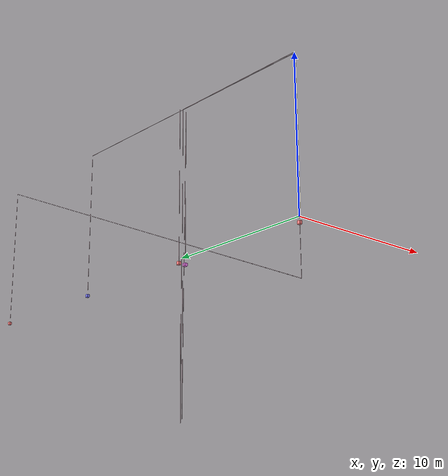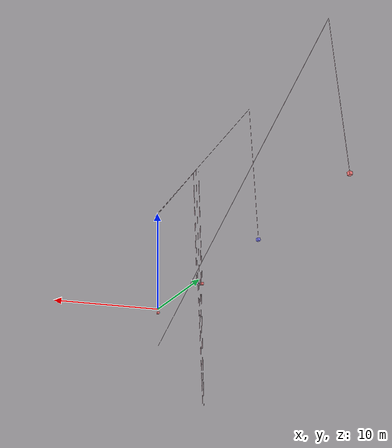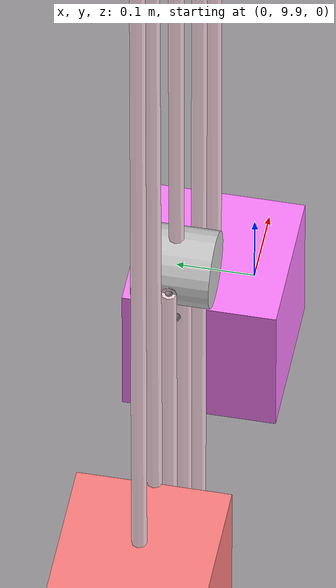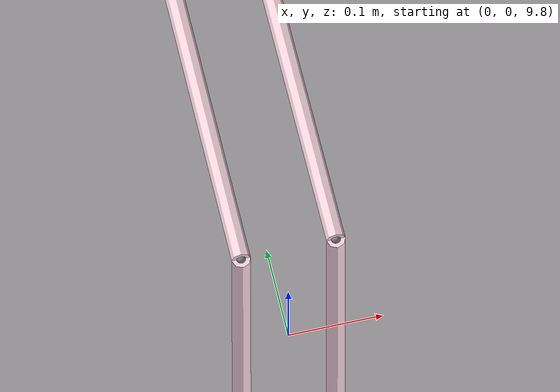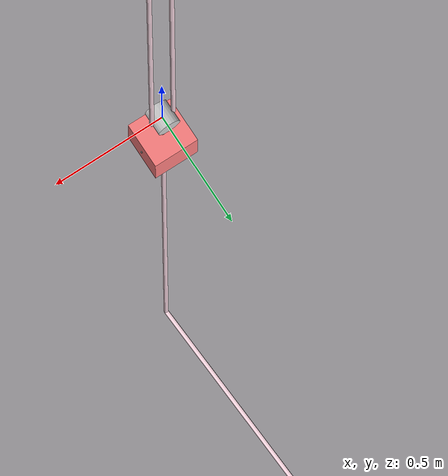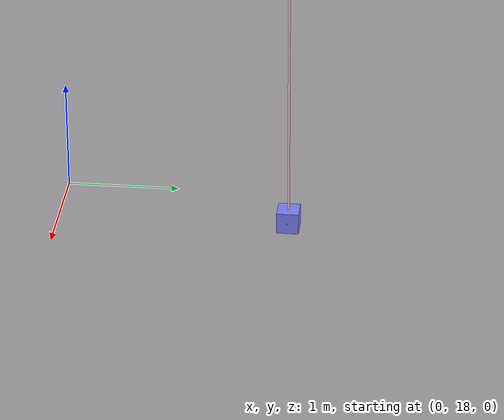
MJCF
<mujoco>
            <compiler angle="radian" autolimits="true" />
            <compiler meshdir="asset" texturedir="asset" assetdir="asset" />
            <option gravity="0 0 -9.81" />
            <default class="main">
            <geom friction="0 0 0" solimp="0.9 1 0.001 0.01 20" solref="0.02 1" condim="1" />
        </default>

        <visual>
            <headlight diffuse="0.7 0.7 0.7" ambient="0.5 0.5 0.5" />
            <global offwidth="1920" offheight="1080" />
        </visual>

        <asset>
            <texture type="skybox" builtin="gradient" rgb1="0 0.5 0.7" rgb2="0 0 0" width="512" height="512" />
            <texture type="2d" name="checks1" builtin="checker" rgb1="1 1 1" rgb2="0 0 0" width="256" height="256" />
            <material name="test_color" texture="checks1" texuniform="true" texrepeat="2 2" />
            <material name="reflectance" reflectance=".4" />
            <texture name="grid" type="2d" builtin="checker" width="512" height="512" rgb1="1.0 0.6235 0.1098" rgb2="1.0 0.749 0.4118" />
            <texture name="white-texture-background" type="2d" file="/home/aryansatpathy/DevStuff/cmu/PHO/sim/geom_sources/fixed_sources/rocket/rocket.white-texture-background.png" content_type="image/png" />
            <material name="pulley" texture="grid" texrepeat="2 2" texuniform="true" />

        </asset>
        <worldbody><body name="masswithmovablepulley_0.left_fixed_pulley" pos="-0.05 0.0 10.0" quat="1.0 0.0 0.0 0.0"><site name="masswithmovablepulley_0.left_fixed_pulley.site" pos="0 0 0.0" quat="1.0 -0.0 -0.0 -0.0" />
</body><body name="masswithmovablepulley_0.movable_pulley-0" pos="0.0 0.0 0.0" quat="1.0 0.0 0.0 0.0"><geom name="masswithmovablepulley_0.movable_pulley-0.geom" type="cylinder" pos="0 0 0" size="0.05 0.05" material="pulley" rgba="0.8 0.8 0.8 1.0" mass="0.43" quat="0 0 0.7071068 0.7071068" contype="1" conaffinity="1" />
<site name="masswithmovablepulley_0.movable_pulley-0.site" pos="0.0 0 -0.05" quat="1.0 -0.0 -0.0 -0.0" />
<site name="masswithmovablepulley_0.movable_pulley-0.sensor" pos="0 0 0" quat="1.0 -0.0 -0.0 -0.0" />
<site name="masswithmovablepulley_0.movable_pulley-0.tendon_site" pos="0.0 0 -0.1" quat="1.0 -0.0 -0.0 -0.0" />
<site name="masswithmovablepulley_0.movable_pulley-0.left_tendon_site" pos="-0.05 0 0" quat="1.0 -0.0 -0.0 -0.0" />
<site name="masswithmovablepulley_0.movable_pulley-0.right_tendon_site" pos="0.05 0 0" quat="1.0 -0.0 -0.0 -0.0" />
<joint type="slide" axis="1 0 0" pos="0 0 0" />
<joint type="slide" axis="0 1 0" pos="0 0 0" />
<joint type="slide" axis="0 0 1" pos="0 0 0" />
</body>
<body name="masswithmovablepulley_0.right_fixed_pulley" pos="0.05 0.0 10.0" quat="1.0 0.0 0.0 0.0"><site name="masswithmovablepulley_0.right_fixed_pulley.site" pos="0 0 0.0" quat="1.0 -0.0 -0.0 -0.0" />
</body><body name="masswithmovablepulley_0.mass" pos="0.0 0.0 -0.35" quat="1.0 0.0 0.0 0.0">
<geom name="masswithmovablepulley_0.mass.geom" type="box" pos="0 0 0" size="0.1 0.1 0.1" rgba="1.0 0.5 0.5 1.0" mass="1.8" quat="0 0 0 1" condim="1" contype="1" conaffinity="1" />
<site name="masswithmovablepulley_0.mass.top-1" pos="0.0 0 0.1" quat="1.0 -0.0 -0.0 -0.0" />
<site name="masswithmovablepulley_0.mass.sensor" pos="0 0 0" quat="1.0 -0.0 -0.0 -0.0" />
<site name="masswithmovablepulley_0.mass.center" pos="0 0 0" quat="1.0 -0.0 -0.0 -0.0" />
<site name="masswithmovablepulley_0.mass.left" pos="-0.1 0 0" quat="1.0 -0.0 -0.0 -0.0" />
<site name="masswithmovablepulley_0.mass.right" pos="0.1 0 0" quat="1.0 -0.0 -0.0 -0.0" />
<site name="masswithmovablepulley_0.mass.bottom" pos="0 0 -0.1" quat="1.0 -0.0 -0.0 -0.0" />
<joint name="masswithmovablepulley_0.mass.joint" type="slide" axis="0 0 1" pos="0 0 0" />
</body><body name="masswithmovablepulley_0.mass.fixed_site" pos="0.0 0.0 -0.35" quat="1.0 0.0 0.0 0.0"><site name="masswithmovablepulley_0.mass.bottom_connecting" pos="0 0 -3.15" quat="1.0 -0.0 -0.0 -0.0" />
</body>
<body name="masswithreversedmovablepulley_1.left_mass_with_fixed_pulley.fixed_pulley" pos="-0.25 10.0 9.9" quat="1.0 0.0 0.0 0.0"><site name="masswithreversedmovablepulley_1.left_mass_with_fixed_pulley.fixed_pulley.site" pos="0 0 0.0" quat="1.0 -0.0 -0.0 -0.0" />
</body>
<body name="masswithreversedmovablepulley_1.left_mass_with_fixed_pulley.mass" pos="-0.25 10.0 -0.35" quat="1.0 0.0 0.0 0.0">
<geom name="masswithreversedmovablepulley_1.left_mass_with_fixed_pulley.mass.geom" type="box" pos="0 0 0" size="0.1 0.1 0.1" rgba="1.0 0.5 0.5 1.0" mass="1.94" quat="0 0 0 1" condim="1" contype="1" conaffinity="1" />
<site name="masswithreversedmovablepulley_1.left_mass_with_fixed_pulley.mass.top-1" pos="0.0 0 0.1" quat="1.0 -0.0 -0.0 -0.0" />
<site name="masswithreversedmovablepulley_1.left_mass_with_fixed_pulley.mass.sensor" pos="0 0 0" quat="1.0 -0.0 -0.0 -0.0" />
<site name="masswithreversedmovablepulley_1.left_mass_with_fixed_pulley.mass.center" pos="0 0 0" quat="1.0 -0.0 -0.0 -0.0" />
<site name="masswithreversedmovablepulley_1.left_mass_with_fixed_pulley.mass.left" pos="-0.1 0 0" quat="1.0 -0.0 -0.0 -0.0" />
<site name="masswithreversedmovablepulley_1.left_mass_with_fixed_pulley.mass.right" pos="0.1 0 0" quat="1.0 -0.0 -0.0 -0.0" />
<site name="masswithreversedmovablepulley_1.left_mass_with_fixed_pulley.mass.bottom" pos="0 0 -0.1" quat="1.0 -0.0 -0.0 -0.0" />
<joint name="masswithreversedmovablepulley_1.left_mass_with_fixed_pulley.mass.joint" type="slide" axis="0 0 1" pos="0 0 0" />
</body>
<body name="masswithreversedmovablepulley_1.movable_pulley" pos="0.0 10.0 0.0" quat="1.0 0.0 0.0 0.0"><geom name="masswithreversedmovablepulley_1.movable_pulley.geom" type="cylinder" pos="0 0 0" size="0.05 0.05" material="pulley" rgba="0.8 0.8 0.8 1.0" mass="1.37" quat="0 0 0.7071068 0.7071068" contype="1" conaffinity="1" />
<site name="masswithreversedmovablepulley_1.movable_pulley.site" pos="0.0 0 0.05" quat="1.0 -0.0 -0.0 -0.0" />
<site name="masswithreversedmovablepulley_1.movable_pulley.sensor" pos="0 0 0" quat="1.0 -0.0 -0.0 -0.0" />
<site name="masswithreversedmovablepulley_1.movable_pulley.tendon_site" pos="0.0 0 -0.1" quat="1.0 -0.0 -0.0 -0.0" />
<site name="masswithreversedmovablepulley_1.movable_pulley.left_tendon_site" pos="-0.05 0 0" quat="1.0 -0.0 -0.0 -0.0" />
<site name="masswithreversedmovablepulley_1.movable_pulley.right_tendon_site" pos="0.05 0 0" quat="1.0 -0.0 -0.0 -0.0" />
<joint type="slide" axis="1 0 0" pos="0 0 0" />
<joint type="slide" axis="0 1 0" pos="0 0 0" />
<joint type="slide" axis="0 0 1" pos="0 0 0" />
</body>
<body name="masswithreversedmovablepulley_1.right_mass_with_fixed_pulley.fixed_pulley" pos="0.25 10.0 9.9" quat="1.0 0.0 0.0 0.0"><site name="masswithreversedmovablepulley_1.right_mass_with_fixed_pulley.fixed_pulley.site" pos="0 0 0.0" quat="1.0 -0.0 -0.0 -0.0" />
</body>
<body name="masswithreversedmovablepulley_1.right_mass_with_fixed_pulley.mass" pos="0.25 10.0 -0.35" quat="1.0 0.0 0.0 0.0">
<geom name="masswithreversedmovablepulley_1.right_mass_with_fixed_pulley.mass.geom" type="box" pos="0 0 0" size="0.1 0.1 0.1" rgba="1.0 0.5 1.0 1.0" mass="6.05" quat="0 0 0 1" condim="1" contype="1" conaffinity="1" />
<site name="masswithreversedmovablepulley_1.right_mass_with_fixed_pulley.mass.top-1" pos="0.0 0 0.1" quat="1.0 -0.0 -0.0 -0.0" />
<site name="masswithreversedmovablepulley_1.right_mass_with_fixed_pulley.mass.sensor" pos="0 0 0" quat="1.0 -0.0 -0.0 -0.0" />
<site name="masswithreversedmovablepulley_1.right_mass_with_fixed_pulley.mass.center" pos="0 0 0" quat="1.0 -0.0 -0.0 -0.0" />
<site name="masswithreversedmovablepulley_1.right_mass_with_fixed_pulley.mass.left" pos="-0.1 0 0" quat="1.0 -0.0 -0.0 -0.0" />
<site name="masswithreversedmovablepulley_1.right_mass_with_fixed_pulley.mass.right" pos="0.1 0 0" quat="1.0 -0.0 -0.0 -0.0" />
<site name="masswithreversedmovablepulley_1.right_mass_with_fixed_pulley.mass.bottom" pos="0 0 -0.1" quat="1.0 -0.0 -0.0 -0.0" />
<joint name="masswithreversedmovablepulley_1.right_mass_with_fixed_pulley.mass.joint" type="slide" axis="0 0 1" pos="0 0 0" />
</body>
<body name="masswithreversedmovablepulley_1.fixed_pulley_above" pos="0.0 10.0 10.0" quat="1.0 0.0 0.0 0.0"><site name="masswithreversedmovablepulley_1.fixed_pulley_above.site" pos="0 0 0.0" quat="1.0 -0.0 -0.0 -0.0" />
</body>
<body name="masswithreversedmovablepulley_1.left_pulley_below" pos="-0.05 10.0 -10.0" quat="1.0 0.0 0.0 0.0"><site name="masswithreversedmovablepulley_1.left_pulley_below.site" pos="0 0 0.0" quat="1.0 -0.0 -0.0 -0.0" />
</body>
<body name="masswithreversedmovablepulley_1.right_pulley_below" pos="0.05 10.0 -10.0" quat="1.0 0.0 0.0 0.0"><site name="masswithreversedmovablepulley_1.right_pulley_below.site" pos="0 0 0.0" quat="1.0 -0.0 -0.0 -0.0" />
</body>
<body name="masswithfixedpulley_2.fixed_pulley" pos="0.0 20.0 10.0" quat="1.0 0.0 0.0 0.0"><site name="masswithfixedpulley_2.fixed_pulley.site" pos="0 0 0.0" quat="1.0 -0.0 -0.0 -0.0" />
</body>
<body name="masswithfixedpulley_2.mass" pos="0.0 20.0 -0.25" quat="1.0 0.0 0.0 0.0">
<geom name="masswithfixedpulley_2.mass.geom" type="box" pos="0 0 0" size="0.1 0.1 0.1" rgba="0.5 0.5 1.0 1.0" mass="1.4" quat="0 0 0 1" condim="1" contype="1" conaffinity="1" />
<site name="masswithfixedpulley_2.mass.top-1" pos="0.0 0 0.1" quat="1.0 -0.0 -0.0 -0.0" />
<site name="masswithfixedpulley_2.mass.sensor" pos="0 0 0" quat="1.0 -0.0 -0.0 -0.0" />
<site name="masswithfixedpulley_2.mass.center" pos="0 0 0" quat="1.0 -0.0 -0.0 -0.0" />
<site name="masswithfixedpulley_2.mass.left" pos="-0.1 0 0" quat="1.0 -0.0 -0.0 -0.0" />
<site name="masswithfixedpulley_2.mass.right" pos="0.1 0 0" quat="1.0 -0.0 -0.0 -0.0" />
<site name="masswithfixedpulley_2.mass.bottom" pos="0 0 -0.1" quat="1.0 -0.0 -0.0 -0.0" />
<joint name="masswithfixedpulley_2.mass.joint" type="slide" axis="0 0 1" pos="0 0 0" />
</body>
<body name="masswithfixedpulley_3.fixed_pulley" pos="0.0 30.0 10.0" quat="1.0 0.0 0.0 0.0"><site name="masswithfixedpulley_3.fixed_pulley.site" pos="0 0 0.0" quat="1.0 -0.0 -0.0 -0.0" />
</body>
<body name="masswithfixedpulley_3.mass" pos="0.0 30.0 -0.25" quat="1.0 0.0 0.0 0.0">
<geom name="masswithfixedpulley_3.mass.geom" type="box" pos="0 0 0" size="0.1 0.1 0.1" rgba="1.0 0.5 0.5 1.0" mass="1.62" quat="0 0 0 1" condim="1" contype="1" conaffinity="1" />
<site name="masswithfixedpulley_3.mass.top-1" pos="0.0 0 0.1" quat="1.0 -0.0 -0.0 -0.0" />
<site name="masswithfixedpulley_3.mass.sensor" pos="0 0 0" quat="1.0 -0.0 -0.0 -0.0" />
<site name="masswithfixedpulley_3.mass.center" pos="0 0 0" quat="1.0 -0.0 -0.0 -0.0" />
<site name="masswithfixedpulley_3.mass.left" pos="-0.1 0 0" quat="1.0 -0.0 -0.0 -0.0" />
<site name="masswithfixedpulley_3.mass.right" pos="0.1 0 0" quat="1.0 -0.0 -0.0 -0.0" />
<site name="masswithfixedpulley_3.mass.bottom" pos="0 0 -0.1" quat="1.0 -0.0 -0.0 -0.0" />
<joint name="masswithfixedpulley_3.mass.joint" type="slide" axis="0 0 1" pos="0 0 0" />
</body>
</worldbody><tendon>
<spatial name="spatial_0" width="0.01" rgba="0.9686 0.8392 0.8784 1" range="0 70.20018749912111" limited="true" solimplimit="0.99 1 0.001 0.01 20" solreflimit="0.02 1">
<site site="masswithreversedmovablepulley_1.movable_pulley.site" />
<site site="masswithreversedmovablepulley_1.fixed_pulley_above.site" />
<site site="masswithmovablepulley_0.left_fixed_pulley.site" />
<site site="masswithmovablepulley_0.movable_pulley-0.left_tendon_site" />
<site site="masswithmovablepulley_0.movable_pulley-0.right_tendon_site" />
<site site="masswithmovablepulley_0.right_fixed_pulley.site" />
<site site="masswithfixedpulley_2.fixed_pulley.site" />
<site site="masswithfixedpulley_2.mass.top-1" />
</spatial>
</tendon>
<tendon>
<spatial name="spatial_1" width="0.01" rgba="0.9686 0.8392 0.8784 1" range="0 46.097568299191956" limited="true" solimplimit="0.99 1 0.001 0.01 20" solreflimit="0.02 1">
<site site="masswithfixedpulley_3.mass.top-1" />
<site site="masswithfixedpulley_3.fixed_pulley.site" />
<site site="masswithmovablepulley_0.mass.bottom_connecting" />
<site site="masswithmovablepulley_0.mass.bottom" />
</spatial>
</tendon>
<tendon>
<spatial name="masswithmovablepulley_0.masswithmovablepulley_0.mass_0_pulley_tendon-0" width="0.01" rgba="0.9686 0.8392 0.8784 1" range="0 0.19999999999999996" limited="true" solimplimit="0.99 1 0.001 0.01 20" solreflimit="0.02 1">
<site site="masswithmovablepulley_0.mass.top-1" />
<site site="masswithmovablepulley_0.movable_pulley-0.site" />
</spatial>
</tendon>
<tendon>
<spatial name="masswithreversedmovablepulley_1.masswithreversedmovablepulley_1.ready_tendon-0" width="0.01" rgba="0.9686 0.8392 0.8784 1" range="0 80.20200999949627" limited="true" solimplimit="0.99 1 0.001 0.01 20" solreflimit="0.02 1">
<site site="masswithreversedmovablepulley_1.left_mass_with_fixed_pulley.mass.top-1" />
<site site="masswithreversedmovablepulley_1.left_mass_with_fixed_pulley.fixed_pulley.site" />
<site site="masswithreversedmovablepulley_1.left_pulley_below.site" />
<site site="masswithreversedmovablepulley_1.movable_pulley.left_tendon_site" />
<site site="masswithreversedmovablepulley_1.movable_pulley.right_tendon_site" />
<site site="masswithreversedmovablepulley_1.right_pulley_below.site" />
<site site="masswithreversedmovablepulley_1.right_mass_with_fixed_pulley.fixed_pulley.site" />
<site site="masswithreversedmovablepulley_1.right_mass_with_fixed_pulley.mass.top-1" />
</spatial>
</tendon>

        <sensor>

        </sensor>
        <custom>

        </custom>
        <contact>

        </contact>
        <actuator>

        </actuator>
    </mujoco>
